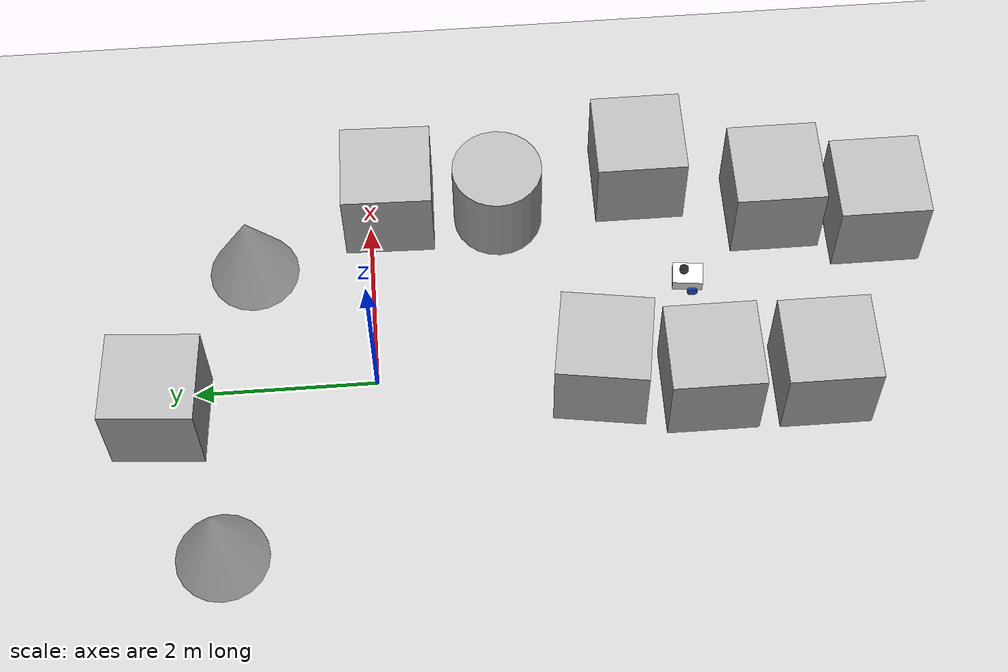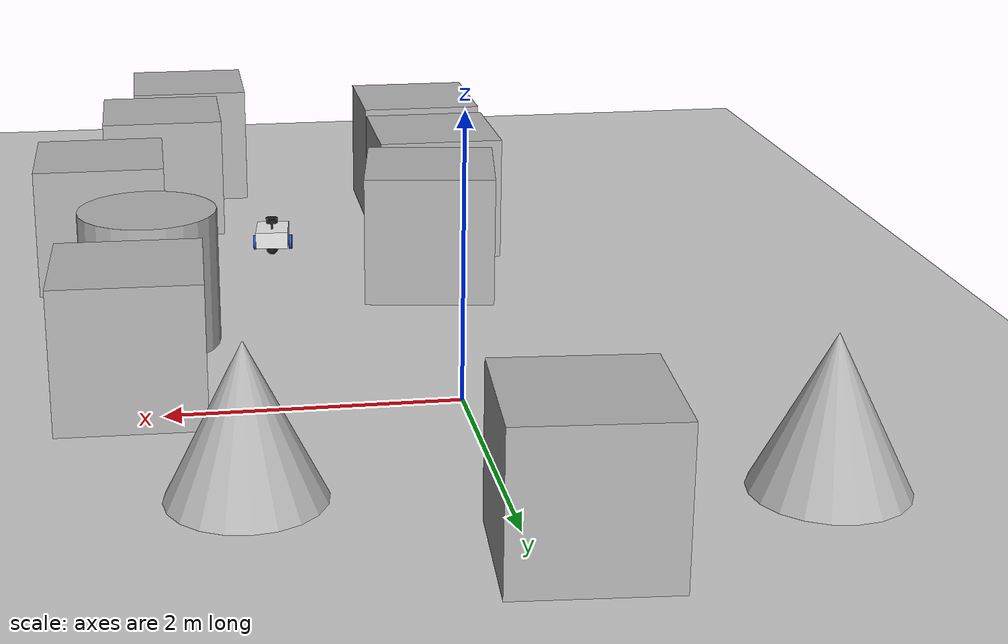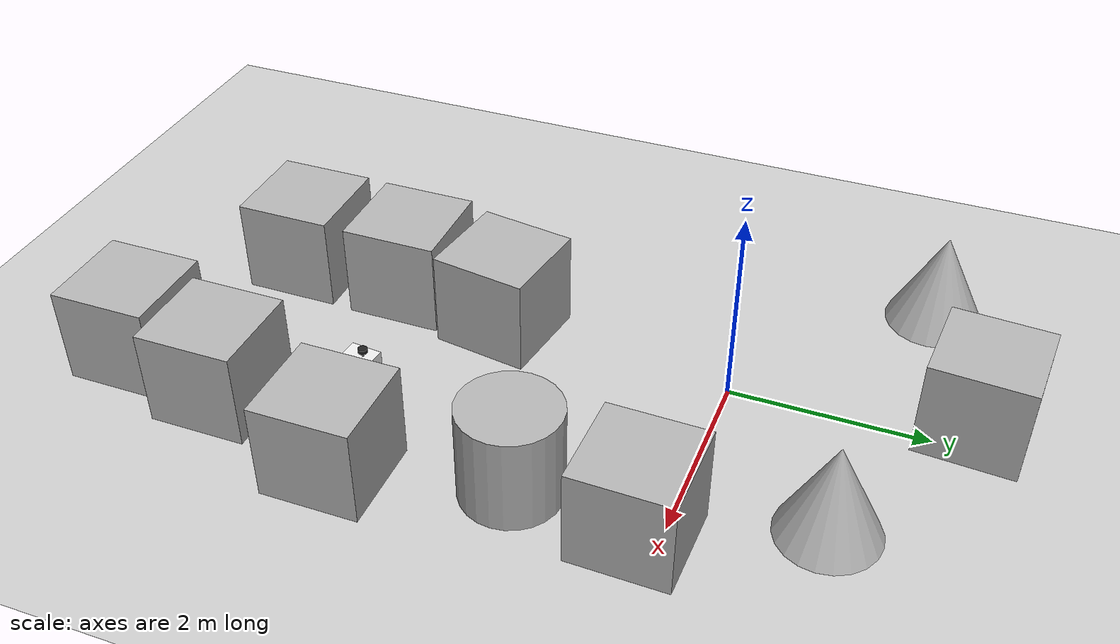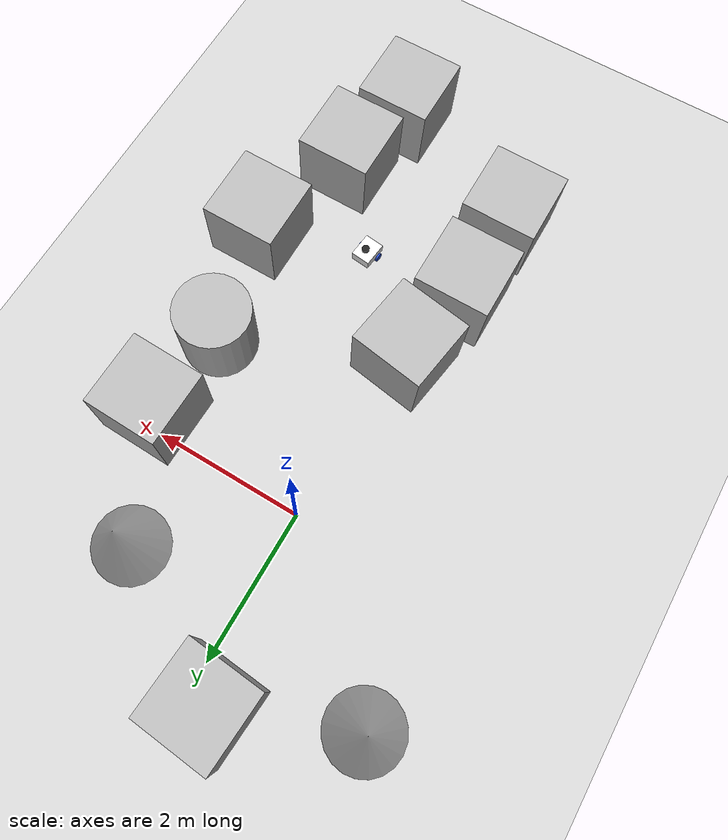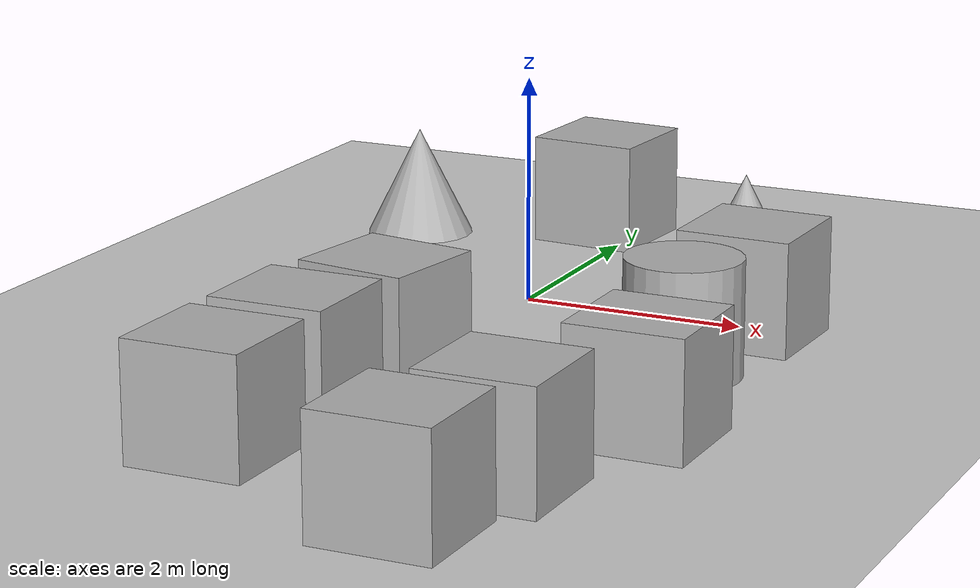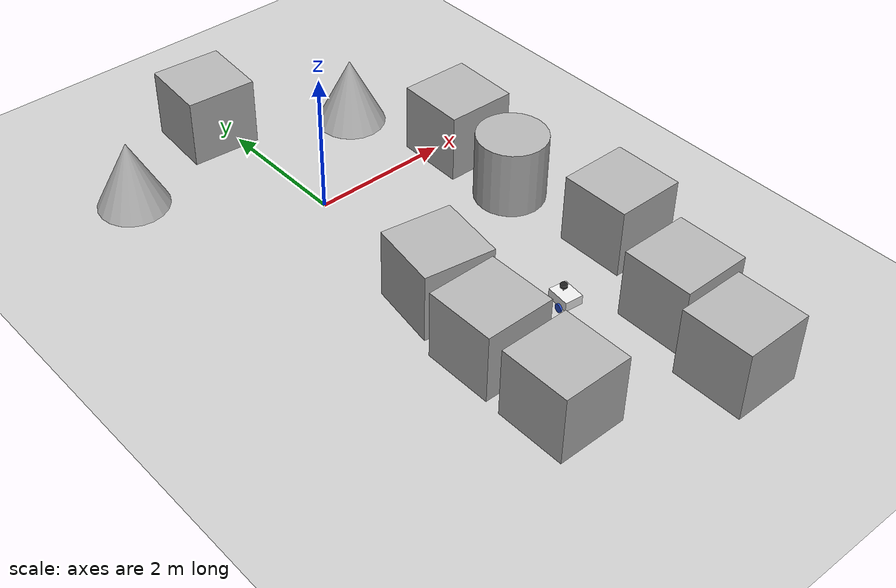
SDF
<sdf version='1.10'>
  <world name='empty'>
    <physics name='1ms' type='ignored'>
      <max_step_size>0.001</max_step_size>
      <real_time_factor>1</real_time_factor>
      <real_time_update_rate>1000</real_time_update_rate>
    </physics>
    <plugin name='gz::sim::systems::Physics' filename='gz-sim-physics-system'/>
    <plugin name='gz::sim::systems::UserCommands' filename='gz-sim-user-commands-system'/>
    <plugin name='gz::sim::systems::SceneBroadcaster' filename='gz-sim-scene-broadcaster-system'/>
    <plugin name='gz::sim::systems::Sensors' filename='gz-sim-sensors-system'>
      <render_engine>ogre2</render_engine>
    </plugin>
    <plugin name='gz::sim::systems::Contact' filename='gz-sim-contact-system'/>
    <gravity>0 0 -9.8000000000000007</gravity>
    <magnetic_field>5.5644999999999998e-06 2.2875799999999999e-05 -4.2388400000000002e-05</magnetic_field>
    <atmosphere type='adiabatic'/>
    <scene>
      <ambient>0.400000006 0.400000006 0.400000006 1</ambient>
      <background>0.699999988 0.699999988 0.699999988 1</background>
      <shadows>true</shadows>
    </scene>
    <model name='ground_plane'>
      <static>true</static>
      <link name='link'>
        <collision name='collision'>
          <geometry>
            <plane>
              <normal>0 0 1</normal>
              <size>100 100</size>
            </plane>
          </geometry>
          <surface>
            <friction>
              <ode/>
            </friction>
            <bounce/>
            <contact/>
          </surface>
        </collision>
        <visual name='visual'>
          <geometry>
            <plane>
              <normal>0 0 1</normal>
              <size>100 100</size>
            </plane>
          </geometry>
          <material>
            <ambient>0.800000012 0.800000012 0.800000012 1</ambient>
            <diffuse>0.800000012 0.800000012 0.800000012 1</diffuse>
            <specular>0.800000012 0.800000012 0.800000012 1</specular>
          </material>
        </visual>
        <pose>0 0 0 0 0 0</pose>
        <inertial>
          <pose>0 0 0 0 0 0</pose>
          <mass>1</mass>
          <inertia>
            <ixx>1</ixx>
            <ixy>0</ixy>
            <ixz>0</ixz>
            <iyy>1</iyy>
            <iyz>0</iyz>
            <izz>1</izz>
          </inertia>
        </inertial>
        <enable_wind>false</enable_wind>
      </link>
      <pose>0 0 0 0 0 0</pose>
      <self_collide>false</self_collide>
    </model>
    <model name='my_bot'>
      <link name='base_link'>
        <inertial>
          <pose>-0.061094786729857818 0 0.085355450236966834 0 0 0</pose>
          <mass>1.0549999999999999</mass>
          <inertia>
            <ixx>0.008501441706161135</ixx>
            <ixy>0</ixy>
            <ixz>0.00026676445497630322</ixz>
            <iyy>0.01214063222748816</iyy>
            <iyz>0</iyz>
            <izz>0.01541085718799369</izz>
          </inertia>
        </inertial>
        <collision name='base_link_fixed_joint_lump__chassis_collision'>
          <pose>-0.058500000000000003 0 0.079000000000000001 0 0 0</pose>
          <geometry>
            <box>
              <size>0.33500000000000002 0.26500000000000001 0.13800000000000001</size>
            </box>
          </geometry>
          <surface>
            <contact>
              <ode/>
            </contact>
            <friction>
              <ode/>
            </friction>
            <bounce/>
          </surface>
        </collision>
        <collision name='base_link_fixed_joint_lump__caster_wheel_collision_1'>
          <pose>-0.151 0 -0.0099999999999999967 0 0 0</pose>
          <geometry>
            <sphere>
              <radius>0.050000000000000003</radius>
            </sphere>
          </geometry>
          <surface>
            <contact>
              <ode/>
            </contact>
            <friction>
              <ode>
                <mu>0.001</mu>
                <mu2>0.001</mu2>
              </ode>
            </friction>
            <bounce/>
          </surface>
        </collision>
        <collision name='base_link_fixed_joint_lump__laser_frame_collision_2'>
          <pose>-0.104 0 0.222 0 0 0</pose>
          <geometry>
            <cylinder>
              <length>0.040000000000000001</length>
              <radius>0.050000000000000003</radius>
            </cylinder>
          </geometry>
          <surface>
            <contact>
              <ode/>
            </contact>
            <friction>
              <ode/>
            </friction>
            <bounce/>
          </surface>
        </collision>
        <visual name='base_link_fixed_joint_lump__chassis_visual'>
          <pose>-0.058500000000000003 0 0.079000000000000001 0 0 0</pose>
          <geometry>
            <box>
              <size>0.33500000000000002 0.26500000000000001 0.13800000000000001</size>
            </box>
          </geometry>
          <material>
            <script>
              <name>Gazebo/White</name>
              <uri>file://media/materials/scripts/gazebo.material</uri>
            </script>
            <diffuse>1 1 1 1</diffuse>
            <ambient>1 1 1 1</ambient>
          </material>
        </visual>
        <visual name='base_link_fixed_joint_lump__caster_wheel_visual_1'>
          <pose>-0.151 0 -0.0099999999999999967 0 0 0</pose>
          <geometry>
            <sphere>
              <radius>0.050000000000000003</radius>
            </sphere>
          </geometry>
          <material>
            <script>
              <name>Gazebo/Black</name>
              <uri>file://media/materials/scripts/gazebo.material</uri>
            </script>
            <diffuse>0 0 0 1</diffuse>
            <ambient>0 0 0 1</ambient>
          </material>
        </visual>
        <visual name='base_link_fixed_joint_lump__laser_frame_visual_2'>
          <pose>-0.104 0 0.222 0 0 0</pose>
          <geometry>
            <cylinder>
              <length>0.040000000000000001</length>
              <radius>0.050000000000000003</radius>
            </cylinder>
          </geometry>
          <material>
            <script>
              <name>Gazebo/Black</name>
              <uri>file://media/materials/scripts/gazebo.material</uri>
            </script>
            <diffuse>0 0 0 1</diffuse>
            <ambient>0 0 0 1</ambient>
          </material>
        </visual>
        <visual name='base_link_fixed_joint_lump__laser_frame_visual_3'>
          <pose>-0.104 0 0.17199999999999999 0 0 0</pose>
          <geometry>
            <cylinder>
              <length>0.10000000000000001</length>
              <radius>0.01</radius>
            </cylinder>
          </geometry>
          <material>
            <script>
              <name>Gazebo/Black</name>
              <uri>file://media/materials/scripts/gazebo.material</uri>
            </script>
            <diffuse>0 0 0 1</diffuse>
            <ambient>0 0 0 1</ambient>
          </material>
        </visual>
        <sensor name='laser' type='gpu_lidar'>
          <pose>-0.104 0 0.222 0 0 0</pose>
          <topic>laser_scan</topic>
          <update_rate>30</update_rate>
          <enable_metrics>false</enable_metrics>
          <lidar>
            <scan>
              <horizontal>
                <samples>360</samples>
                <resolution>1</resolution>
                <min_angle>-3.1400000000000001</min_angle>
                <max_angle>3.1400000000000001</max_angle>
              </horizontal>
              <vertical>
                <samples>1</samples>
                <min_angle>0</min_angle>
                <max_angle>0</max_angle>
                <resolution>1</resolution>
              </vertical>
            </scan>
            <range>
              <min>0.29999999999999999</min>
              <max>12</max>
              <resolution>0.014999999999999999</resolution>
            </range>
            <noise>
              <type>none</type>
              <mean>0</mean>
              <stddev>0</stddev>
            </noise>
            <visibility_mask>4294967295</visibility_mask>
          </lidar>
        </sensor>
        <pose>0 0 0 0 0 0</pose>
        <enable_wind>false</enable_wind>
      </link>
      <joint name='left_wheel_joint' type='revolute'>
        <pose>0 -1.3877799999999999e-17 0 0 0 0</pose>
        <parent>base_link</parent>
        <child>left_wheel</child>
        <axis>
          <xyz>0 0 1</xyz>
          <limit>
            <lower>-inf</lower>
            <upper>inf</upper>
            <effort>inf</effort>
            <velocity>inf</velocity>
            <stiffness>100000000</stiffness>
            <dissipation>1</dissipation>
          </limit>
          <dynamics>
            <spring_reference>0</spring_reference>
            <spring_stiffness>0</spring_stiffness>
            <damping>1</damping>
            <friction>1</friction>
          </dynamics>
        </axis>
      </joint>
      <link name='left_wheel'>
        <pose>3.8004849933770402e-08 0.14849999196566688 6.1175933638302205e-08 -1.5707959666210392 1.1898695368239749 3.3435683551265228e-07</pose>
        <inertial>
          <pose>0 0 0 0 0 0</pose>
          <mass>0.050000000000000003</mass>
          <inertia>
            <ixx>4.7816666666666659e-05</ixx>
            <ixy>0</ixy>
            <ixz>0</ixz>
            <iyy>4.7816666666666659e-05</iyy>
            <iyz>0</iyz>
            <izz>9.0000000000000006e-05</izz>
          </inertia>
        </inertial>
        <collision name='left_wheel_collision'>
          <pose>0 0 0 0 0 0</pose>
          <geometry>
            <sphere>
              <radius>0.059999999999999998</radius>
            </sphere>
          </geometry>
          <surface>
            <contact>
              <ode/>
            </contact>
            <friction>
              <ode>
                <mu>0.5</mu>
                <mu2>0.5</mu2>
              </ode>
            </friction>
            <bounce/>
          </surface>
        </collision>
        <visual name='left_wheel_visual'>
          <pose>0 0 0 0 0 0</pose>
          <geometry>
            <cylinder>
              <length>0.025999999999999999</length>
              <radius>0.059999999999999998</radius>
            </cylinder>
          </geometry>
          <material>
            <script>
              <name>Gazebo/Blue</name>
              <uri>file://media/materials/scripts/gazebo.material</uri>
            </script>
            <diffuse>0.25 0.25 1 1</diffuse>
            <ambient>0.25 0.25 1 1</ambient>
          </material>
        </visual>
        <enable_wind>false</enable_wind>
      </link>
      <joint name='right_wheel_joint' type='revolute'>
        <pose>0 1.3877799999999999e-17 0 0 0 0</pose>
        <parent>base_link</parent>
        <child>right_wheel</child>
        <axis>
          <xyz>0 0 -1</xyz>
          <limit>
            <lower>-inf</lower>
            <upper>inf</upper>
            <effort>inf</effort>
            <velocity>inf</velocity>
            <stiffness>100000000</stiffness>
            <dissipation>1</dissipation>
          </limit>
          <dynamics>
            <spring_reference>0</spring_reference>
            <spring_stiffness>0</spring_stiffness>
            <damping>1</damping>
            <friction>1</friction>
          </dynamics>
        </axis>
      </joint>
      <link name='right_wheel'>
        <pose>-4.4408920985006262e-16 -0.14850000000000052 1.3877787807814457e-17 1.570796326794895 -1.0109978071068071 1.463528171406331e-15</pose>
        <inertial>
          <pose>0 0 0 0 0 0</pose>
          <mass>0.050000000000000003</mass>
          <inertia>
            <ixx>4.7816666666666659e-05</ixx>
            <ixy>0</ixy>
            <ixz>0</ixz>
            <iyy>4.7816666666666659e-05</iyy>
            <iyz>0</iyz>
            <izz>9.0000000000000006e-05</izz>
          </inertia>
        </inertial>
        <collision name='right_wheel_collision'>
          <pose>0 0 0 0 0 0</pose>
          <geometry>
            <sphere>
              <radius>0.059999999999999998</radius>
            </sphere>
          </geometry>
          <surface>
            <contact>
              <ode/>
            </contact>
            <friction>
              <ode>
                <mu>0.5</mu>
                <mu2>0.5</mu2>
              </ode>
            </friction>
            <bounce/>
          </surface>
        </collision>
        <visual name='right_wheel_visual'>
          <pose>0 0 0 0 0 0</pose>
          <geometry>
            <cylinder>
              <length>0.025999999999999999</length>
              <radius>0.059999999999999998</radius>
            </cylinder>
          </geometry>
          <material>
            <script>
              <name>Gazebo/Blue</name>
              <uri>file://media/materials/scripts/gazebo.material</uri>
            </script>
            <diffuse>0.25 0.25 1 1</diffuse>
            <ambient>0.25 0.25 1 1</ambient>
          </material>
        </visual>
        <enable_wind>false</enable_wind>
      </link>
      <plugin name='gz::sim::systems::DiffDrive' filename='gz-sim-diff-drive-system'>
        <left_joint>left_wheel_joint</left_joint>
        <right_joint>right_wheel_joint</right_joint>
        <wheel_separation>0.297</wheel_separation>
        <wheel_radius>0.06</wheel_radius>
        <max_linear_acceleration>0.33</max_linear_acceleration>
        <topic>cmd_vel</topic>
        <frame_id>odom</frame_id>
        <child_frame_id>base_link</child_frame_id>
        <odom_topic>odom</odom_topic>
        <odom_publisher_frequency>30</odom_publisher_frequency>
        <tf_topic>/tf</tf_topic>
      </plugin>
      <plugin name='gz::sim::systems::JointStatePublisher' filename='gz-sim-joint-state-publisher-system'>
        <topic>joint_states</topic>
        <joint_name>left_wheel_joint</joint_name>
        <joint_name>right_wheel_joint</joint_name>
      </plugin>
      <frame name='base_footprint_joint' attached_to='base_link'>
        <pose>0 0 0 0 0 0</pose>
      </frame>
      <frame name='base_footprint' attached_to='base_footprint_joint'>
        <pose>0 0 0 0 0 0</pose>
      </frame>
      <frame name='caster_wheel_joint' attached_to='chassis'>
        <pose>0.074999999999999997 0 -0.02 0 0 0</pose>
      </frame>
      <frame name='caster_wheel' attached_to='caster_wheel_joint'>
        <pose>0 0 0 0 0 0</pose>
      </frame>
      <frame name='laser_joint' attached_to='chassis'>
        <pose>0.122 0 0.21199999999999999 0 0 0</pose>
      </frame>
      <frame name='laser_frame' attached_to='laser_joint'>
        <pose>0 0 0 0 0 0</pose>
      </frame>
      <frame name='chassis_joint' attached_to='base_link'>
        <pose>-0.22600000000000001 0 0.01 0 0 0</pose>
      </frame>
      <frame name='chassis' attached_to='chassis_joint'>
        <pose>0 0 0 0 0 0</pose>
      </frame>
      <pose>1.0217808696974109 -3.5739678941208388 0.059999877642263243 -3.6173505708158963e-07 -1.6825721980819504e-06 -1.6824669173447335</pose>
      <static>false</static>
      <self_collide>false</self_collide>
    </model>
    <model name='box'>
      <pose>2.1974628192433654 -0.22324645524855005 0.49999913397210022 9.8945928764139432e-10 -1.697598342373046e-06 -0.023585261096600564</pose>
      <link name='box_link'>
        <inertial>
          <inertia>
            <ixx>0.16666</ixx>
            <ixy>0</ixy>
            <ixz>0</ixz>
            <iyy>0.16666</iyy>
            <iyz>0</iyz>
            <izz>0.16666</izz>
          </inertia>
          <mass>1</mass>
          <pose>0 0 0 0 0 0</pose>
        </inertial>
        <collision name='box_collision'>
          <geometry>
            <box>
              <size>1 1 1</size>
            </box>
          </geometry>
          <surface>
            <friction>
              <ode/>
            </friction>
            <bounce/>
            <contact/>
          </surface>
        </collision>
        <visual name='box_visual'>
          <geometry>
            <box>
              <size>1 1 1</size>
            </box>
          </geometry>
          <material>
            <ambient>0.300000012 0.300000012 0.300000012 1</ambient>
            <diffuse>0.699999988 0.699999988 0.699999988 1</diffuse>
            <specular>1 1 1 1</specular>
          </material>
        </visual>
        <pose>0 0 0 0 0 0</pose>
        <enable_wind>false</enable_wind>
      </link>
      <static>false</static>
      <self_collide>false</self_collide>
    </model>
    <model name='box_0'>
      <pose>-0.27149098087019996 2.3442219306179566 0.49999922941157293 -1.4950289578707215e-06 3.6863795025981388e-08 -0.072876818818349093</pose>
      <link name='box_link'>
        <inertial>
          <inertia>
            <ixx>0.16666</ixx>
            <ixy>0</ixy>
            <ixz>0</ixz>
            <iyy>0.16666</iyy>
            <iyz>0</iyz>
            <izz>0.16666</izz>
          </inertia>
          <mass>1</mass>
          <pose>0 0 0 0 0 0</pose>
        </inertial>
        <collision name='box_collision'>
          <geometry>
            <box>
              <size>1 1 1</size>
            </box>
          </geometry>
          <surface>
            <friction>
              <ode/>
            </friction>
            <bounce/>
            <contact/>
          </surface>
        </collision>
        <visual name='box_visual'>
          <geometry>
            <box>
              <size>1 1 1</size>
            </box>
          </geometry>
          <material>
            <ambient>0.300000012 0.300000012 0.300000012 1</ambient>
            <diffuse>0.699999988 0.699999988 0.699999988 1</diffuse>
            <specular>1 1 1 1</specular>
          </material>
        </visual>
        <pose>0 0 0 0 0 0</pose>
        <enable_wind>false</enable_wind>
      </link>
      <static>false</static>
      <self_collide>false</self_collide>
    </model>
    <model name='cone'>
      <pose>1.5302226143646109 1.3319118516734585 0.49999999993296756 5.2539673238603227e-17 -7.7132841034849224e-10 -2.2042306062451038e-22</pose>
      <link name='cone_link'>
        <inertial>
          <inertia>
            <ixx>0.074999999999999997</ixx>
            <ixy>0</ixy>
            <ixz>0</ixz>
            <iyy>0.074999999999999997</iyy>
            <iyz>0</iyz>
            <izz>0.074999999999999997</izz>
          </inertia>
          <mass>1</mass>
          <pose>0 0 0 0 0 0</pose>
        </inertial>
        <collision name='cone_collision'>
          <geometry>
            <cone>
              <radius>0.5</radius>
              <length>1</length>
            </cone>
          </geometry>
          <surface>
            <friction>
              <ode/>
            </friction>
            <bounce/>
            <contact/>
          </surface>
        </collision>
        <visual name='cone_visual'>
          <geometry>
            <cone>
              <radius>0.5</radius>
              <length>1</length>
            </cone>
          </geometry>
          <material>
            <ambient>0.300000012 0.300000012 0.300000012 1</ambient>
            <diffuse>0.699999988 0.699999988 0.699999988 1</diffuse>
            <specular>1 1 1 1</specular>
          </material>
        </visual>
        <pose>0 0 0 0 0 0</pose>
        <enable_wind>false</enable_wind>
      </link>
      <static>false</static>
      <self_collide>false</self_collide>
    </model>
    <model name='cone_0'>
      <pose>-1.9411452785824055 1.6989824559613294 0.49999982892590406 2.6695609830676022e-07 -1.8699371697283146e-07 -2.2176508845935168e-05</pose>
      <link name='cone_link'>
        <inertial>
          <inertia>
            <ixx>0.074999999999999997</ixx>
            <ixy>0</ixy>
            <ixz>0</ixz>
            <iyy>0.074999999999999997</iyy>
            <iyz>0</iyz>
            <izz>0.074999999999999997</izz>
          </inertia>
          <mass>1</mass>
          <pose>0 0 0 0 0 0</pose>
        </inertial>
        <collision name='cone_collision'>
          <geometry>
            <cone>
              <radius>0.5</radius>
              <length>1</length>
            </cone>
          </geometry>
          <surface>
            <friction>
              <ode/>
            </friction>
            <bounce/>
            <contact/>
          </surface>
        </collision>
        <visual name='cone_visual'>
          <geometry>
            <cone>
              <radius>0.5</radius>
              <length>1</length>
            </cone>
          </geometry>
          <material>
            <ambient>0.300000012 0.300000012 0.300000012 1</ambient>
            <diffuse>0.699999988 0.699999988 0.699999988 1</diffuse>
            <specular>1 1 1 1</specular>
          </material>
        </visual>
        <pose>0 0 0 0 0 0</pose>
        <enable_wind>false</enable_wind>
      </link>
      <static>false</static>
      <self_collide>false</self_collide>
    </model>
    <model name='cylinder'>
      <pose>2.0559570748553888 -1.454783743027487 0.50000002684953593 -6.4382236092499276e-08 1.3360818271949097e-06 -0.0033139073765294266</pose>
      <link name='cylinder_link'>
        <inertial>
          <inertia>
            <ixx>0.14580000000000001</ixx>
            <ixy>0</ixy>
            <ixz>0</ixz>
            <iyy>0.14580000000000001</iyy>
            <iyz>0</iyz>
            <izz>0.125</izz>
          </inertia>
          <mass>1</mass>
          <pose>0 0 0 0 0 0</pose>
        </inertial>
        <collision name='cylinder_collision'>
          <geometry>
            <cylinder>
              <radius>0.5</radius>
              <length>1</length>
            </cylinder>
          </geometry>
          <surface>
            <friction>
              <ode/>
            </friction>
            <bounce/>
            <contact/>
          </surface>
        </collision>
        <visual name='cylinder_visual'>
          <geometry>
            <cylinder>
              <radius>0.5</radius>
              <length>1</length>
            </cylinder>
          </geometry>
          <material>
            <ambient>0.300000012 0.300000012 0.300000012 1</ambient>
            <diffuse>0.699999988 0.699999988 0.699999988 1</diffuse>
            <specular>1 1 1 1</specular>
          </material>
        </visual>
        <pose>0 0 0 0 0 0</pose>
        <enable_wind>false</enable_wind>
      </link>
      <static>false</static>
      <self_collide>false</self_collide>
    </model>
    <model name='box_1'>
      <pose>2.4184434514966666 -3.0723351418330997 0.49999999990199806 6.2287739151293738e-22 9.3279666454713669e-22 -3.6315533669320137e-22</pose>
      <link name='box_link'>
        <inertial>
          <inertia>
            <ixx>0.16666</ixx>
            <ixy>0</ixy>
            <ixz>0</ixz>
            <iyy>0.16666</iyy>
            <iyz>0</iyz>
            <izz>0.16666</izz>
          </inertia>
          <mass>1</mass>
          <pose>0 0 0 0 0 0</pose>
        </inertial>
        <collision name='box_collision'>
          <geometry>
            <box>
              <size>1 1 1</size>
            </box>
          </geometry>
          <surface>
            <friction>
              <ode/>
            </friction>
            <bounce/>
            <contact/>
          </surface>
        </collision>
        <visual name='box_visual'>
          <geometry>
            <box>
              <size>1 1 1</size>
            </box>
          </geometry>
          <material>
            <ambient>0.300000012 0.300000012 0.300000012 1</ambient>
            <diffuse>0.699999988 0.699999988 0.699999988 1</diffuse>
            <specular>1 1 1 1</specular>
          </material>
        </visual>
        <pose>0 0 0 0 0 0</pose>
        <enable_wind>false</enable_wind>
      </link>
      <static>false</static>
      <self_collide>false</self_collide>
    </model>
    <model name='box_2'>
      <pose>1.9075553201665727 -4.5581260099812049 0.49999999990199806 6.2287739151293738e-22 9.3279666454713669e-22 -3.6315533669320137e-22</pose>
      <link name='box_link'>
        <inertial>
          <inertia>
            <ixx>0.16666</ixx>
            <ixy>0</ixy>
            <ixz>0</ixz>
            <iyy>0.16666</iyy>
            <iyz>0</iyz>
            <izz>0.16666</izz>
          </inertia>
          <mass>1</mass>
          <pose>0 0 0 0 0 0</pose>
        </inertial>
        <collision name='box_collision'>
          <geometry>
            <box>
              <size>1 1 1</size>
            </box>
          </geometry>
          <surface>
            <friction>
              <ode/>
            </friction>
            <bounce/>
            <contact/>
          </surface>
        </collision>
        <visual name='box_visual'>
          <geometry>
            <box>
              <size>1 1 1</size>
            </box>
          </geometry>
          <material>
            <ambient>0.300000012 0.300000012 0.300000012 1</ambient>
            <diffuse>0.699999988 0.699999988 0.699999988 1</diffuse>
            <specular>1 1 1 1</specular>
          </material>
        </visual>
        <pose>0 0 0 0 0 0</pose>
        <enable_wind>false</enable_wind>
      </link>
      <static>false</static>
      <self_collide>false</self_collide>
    </model>
    <model name='box_3'>
      <pose>-0.14799489153668127 -2.4475289546323786 0.4999991295554515 9.26171036297585e-07 -6.9764043893083462e-07 -0.15346593702262201</pose>
      <link name='box_link'>
        <inertial>
          <inertia>
            <ixx>0.16666</ixx>
            <ixy>0</ixy>
            <ixz>0</ixz>
            <iyy>0.16666</iyy>
            <iyz>0</iyz>
            <izz>0.16666</izz>
          </inertia>
          <mass>1</mass>
          <pose>0 0 0 0 0 0</pose>
        </inertial>
        <collision name='box_collision'>
          <geometry>
            <box>
              <size>1 1 1</size>
            </box>
          </geometry>
          <surface>
            <friction>
              <ode/>
            </friction>
            <bounce/>
            <contact/>
          </surface>
        </collision>
        <visual name='box_visual'>
          <geometry>
            <box>
              <size>1 1 1</size>
            </box>
          </geometry>
          <material>
            <ambient>0.300000012 0.300000012 0.300000012 1</ambient>
            <diffuse>0.699999988 0.699999988 0.699999988 1</diffuse>
            <specular>1 1 1 1</specular>
          </material>
        </visual>
        <pose>0 0 0 0 0 0</pose>
        <enable_wind>false</enable_wind>
      </link>
      <static>false</static>
      <self_collide>false</self_collide>
    </model>
    <model name='box_4'>
      <pose>-0.34281008241993627 -3.5889845041438475 0.49999999990199806 6.2287739151293738e-22 9.3279666454713669e-22 -3.6315533669320137e-22</pose>
      <link name='box_link'>
        <inertial>
          <inertia>
            <ixx>0.16666</ixx>
            <ixy>0</ixy>
            <ixz>0</ixz>
            <iyy>0.16666</iyy>
            <iyz>0</iyz>
            <izz>0.16666</izz>
          </inertia>
          <mass>1</mass>
          <pose>0 0 0 0 0 0</pose>
        </inertial>
        <collision name='box_collision'>
          <geometry>
            <box>
              <size>1 1 1</size>
            </box>
          </geometry>
          <surface>
            <friction>
              <ode/>
            </friction>
            <bounce/>
            <contact/>
          </surface>
        </collision>
        <visual name='box_visual'>
          <geometry>
            <box>
              <size>1 1 1</size>
            </box>
          </geometry>
          <material>
            <ambient>0.300000012 0.300000012 0.300000012 1</ambient>
            <diffuse>0.699999988 0.699999988 0.699999988 1</diffuse>
            <specular>1 1 1 1</specular>
          </material>
        </visual>
        <pose>0 0 0 0 0 0</pose>
        <enable_wind>false</enable_wind>
      </link>
      <static>false</static>
      <self_collide>false</self_collide>
    </model>
    <model name='box_5'>
      <pose>-0.36081274898761029 -4.8118833684104629 0.49999999990199806 6.2287739151293738e-22 9.3279666454713669e-22 -3.6315533669320137e-22</pose>
      <link name='box_link'>
        <inertial>
          <inertia>
            <ixx>0.16666</ixx>
            <ixy>0</ixy>
            <ixz>0</ixz>
            <iyy>0.16666</iyy>
            <iyz>0</iyz>
            <izz>0.16666</izz>
          </inertia>
          <mass>1</mass>
          <pose>0 0 0 0 0 0</pose>
        </inertial>
        <collision name='box_collision'>
          <geometry>
            <box>
              <size>1 1 1</size>
            </box>
          </geometry>
          <surface>
            <friction>
              <ode/>
            </friction>
            <bounce/>
            <contact/>
          </surface>
        </collision>
        <visual name='box_visual'>
          <geometry>
            <box>
              <size>1 1 1</size>
            </box>
          </geometry>
          <material>
            <ambient>0.300000012 0.300000012 0.300000012 1</ambient>
            <diffuse>0.699999988 0.699999988 0.699999988 1</diffuse>
            <specular>1 1 1 1</specular>
          </material>
        </visual>
        <pose>0 0 0 0 0 0</pose>
        <enable_wind>false</enable_wind>
      </link>
      <static>false</static>
      <self_collide>false</self_collide>
    </model>
    <model name='box_6'>
      <pose>1.6457293038372001 -5.6717308326983584 0.49999999990199806 6.2287739151293738e-22 9.3279666454713669e-22 -3.6315533669320137e-22</pose>
      <link name='box_link'>
        <inertial>
          <inertia>
            <ixx>0.16666</ixx>
            <ixy>0</ixy>
            <ixz>0</ixz>
            <iyy>0.16666</iyy>
            <iyz>0</iyz>
            <izz>0.16666</izz>
          </inertia>
          <mass>1</mass>
          <pose>0 0 0 0 0 0</pose>
        </inertial>
        <collision name='box_collision'>
          <geometry>
            <box>
              <size>1 1 1</size>
            </box>
          </geometry>
          <surface>
            <friction>
              <ode/>
            </friction>
            <bounce/>
            <contact/>
          </surface>
        </collision>
        <visual name='box_visual'>
          <geometry>
            <box>
              <size>1 1 1</size>
            </box>
          </geometry>
          <material>
            <ambient>0.300000012 0.300000012 0.300000012 1</ambient>
            <diffuse>0.699999988 0.699999988 0.699999988 1</diffuse>
            <specular>1 1 1 1</specular>
          </material>
        </visual>
        <pose>0 0 0 0 0 0</pose>
        <enable_wind>false</enable_wind>
      </link>
      <static>false</static>
      <self_collide>false</self_collide>
    </model>
    <light name='sun' type='directional'>
      <pose>0 0 10 0 0 0</pose>
      <cast_shadows>true</cast_shadows>
      <intensity>1</intensity>
      <direction>-0.5 0.10000000000000001 -0.90000000000000002</direction>
      <diffuse>0.800000012 0.800000012 0.800000012 1</diffuse>
      <specular>0.200000003 0.200000003 0.200000003 1</specular>
      <attenuation>
        <range>1000</range>
        <linear>0.0099999997764825821</linear>
        <constant>0.89999997615814209</constant>
        <quadratic>0.0010000000474974513</quadratic>
      </attenuation>
      <spot>
        <inner_angle>0</inner_angle>
        <outer_angle>0</outer_angle>
        <falloff>0</falloff>
      </spot>
    </light>
  </world>
</sdf>
